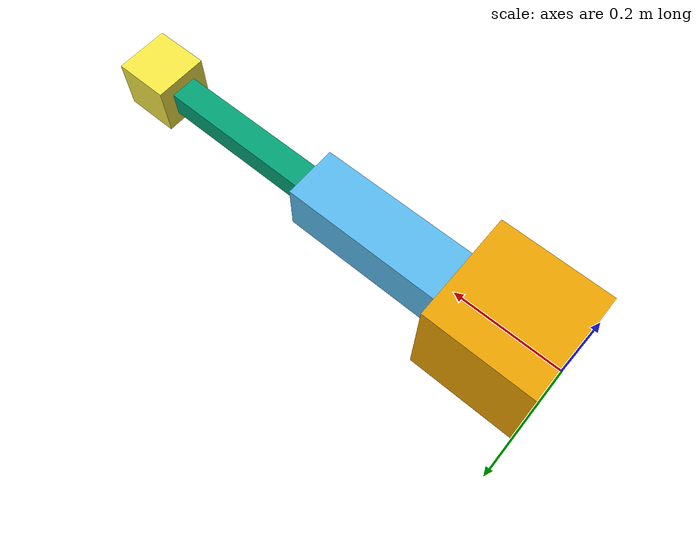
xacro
<robot name="example_manipulator" xmlns:xacro="http://wiki.ros.org/xacro">

    <!-- Args -->

    <xacro:arg name="fixed_base_link" default="false" />
    <xacro:property name="do_fix_base_link" value="$(arg fixed_base_link)" />

    <!-- Macros -->

    <xacro:macro name="make_box_link" params="name mass size_x size_y size_z">
        <link name="${name}">
            <inertial>
                <origin xyz="${size_x / 2} 0 0" />
                <mass value="${mass}" />
                <inertia ixx="${mass * (size_y * size_y + size_z * size_z) / 12}" ixy="0" ixz="0"
                         iyy="${mass * (size_z * size_z + size_x * size_x) / 12}" iyz="0"
                         izz="${mass * (size_x * size_x + size_y * size_y) / 12}" />
            </inertial>
            <visual>
                <origin xyz="${size_x / 2} 0 0" />
                <geometry>
                    <box size="${size_x} ${size_y} ${size_z}" />
                </geometry>
            </visual>
        </link>
    </xacro:macro>

    <xacro:macro name="make_cont_joint" params="name parent child xyz rpy effort velocity">
        <joint name="${name}" type="continuous">
            <parent link="${parent}" />
            <child link="${child}" />
            <origin xyz="${xyz}" rpy="${rpy}" />
            <axis xyz="0 0 1" />
            <limit effort="${effort}" velocity="${velocity}" />
        </joint>
        <transmission name="${name}_trans">
            <type>transmission_interface/SimpleTransmission</type>
            <joint name="${name}">
                <hardwareInterface>hardware_interface/EffortJointInterface</hardwareInterface>
            </joint>
            <actuator name="${name}_actuator">
                <mechanicalReduction>1</mechanicalReduction>
            </actuator>
        </transmission>
    </xacro:macro>

    <!-- Constants -->

    <xacro:property name="TORAD" value="${3.14159265359 / 180}" />

    <!-- Links & joints -->

    <xacro:if value="${do_fix_base_link}">
        <link name="world">
            <inertial>
                <origin xyz="0 0 0" />
                <mass value="1000" />
                <inertia ixx="100" ixy="0" ixz="0"
                         iyy="100" iyz="0"
                         izz="100" />
            </inertial>
        </link>

        <joint name="anchor" type="fixed">
            <parent link="world" />
            <child link="body" />
        </joint>
    </xacro:if>

    <xacro:make_box_link name="body" mass="1." size_x="0.2" size_y="0.2" size_z="0.2" />

    <xacro:make_cont_joint name="shoulder" parent="body" child="upper_arm"
                           xyz="0.2 0 0" rpy="${90 * TORAD} 0 0"
                           effort="30." velocity="1." />

    <xacro:make_box_link name="upper_arm" mass="1." size_x="0.3" size_y="0.1" size_z="0.1" />

    <xacro:make_cont_joint name="elbow" parent="upper_arm" child="forearm"
                           xyz="0.3 0 0" rpy="0 0 0"
                           effort="15." velocity="1." />

    <xacro:make_box_link name="forearm" mass="1." size_x="0.3" size_y="0.05" size_z="0.05" />

    <xacro:make_cont_joint name="wrist" parent="forearm" child="hand"
                           xyz="0.3 0 0" rpy="0 0 0"
                           effort="5." velocity="1." />

    <xacro:make_box_link name="hand" mass="0.3" size_x="0.1" size_y="0.1" size_z="0.1" />

    <!-- Gazebo plugin -->

    <gazebo>
        <plugin name="gazebo_ros_control" filename="libgazebo_ros_control.so">
            <legacyModeNS>false</legacyModeNS>
        </plugin>
    </gazebo>

</robot>
